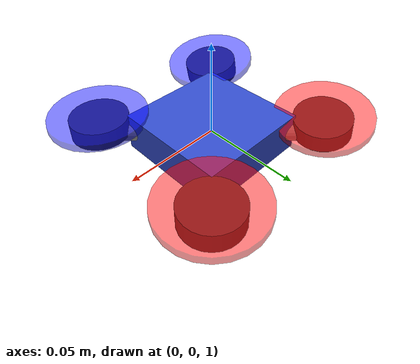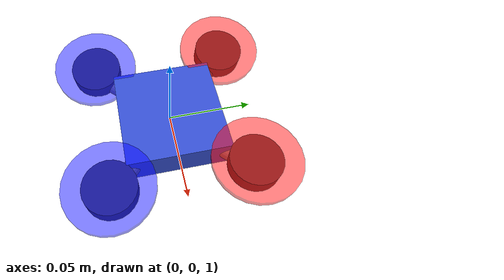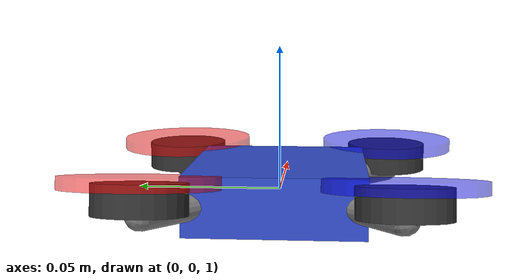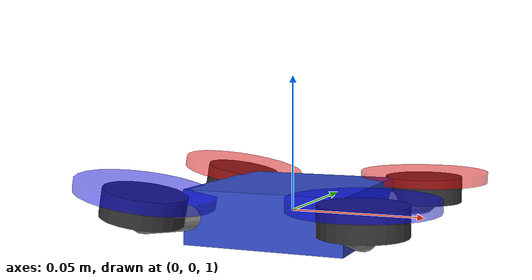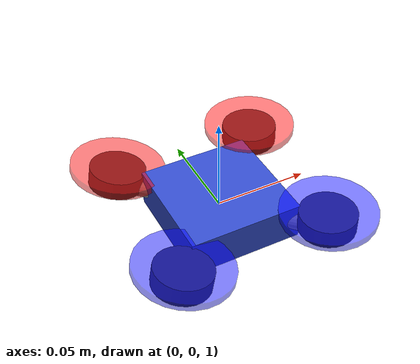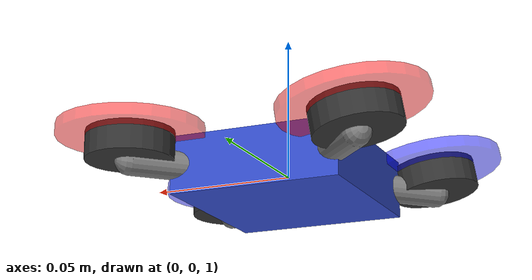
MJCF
<mujoco model="custom_drone">
    <compiler angle="degree" coordinate="local" eulerseq="xyz"/>
    <option timestep="0.002" gravity="0 0 -9.81"/>

    <custom>
        <numeric name="transport_delay_ms" data="10.0"/>
        <numeric name="motor_tau" data="0.015"/>
        <numeric name="dof_mask" data="0 0 1 1 1 1"/>
    </custom>

    <worldbody>
        <light name="sun" pos="0 0 10" dir="0 0 -1"/>
        <geom name="floor" type="plane" size="10 10 0.1" rgba="0.8 0.9 0.8 1"/>

        <body name="drone" pos="0 0 1">
            <freejoint name="root"/>

            <!-- Core -->
            <geom name="core" type="box" size="0.03 0.03 0.01" mass="0.08" rgba="0.2 0.3 0.8 1"/>

            <!-- Motor 0: 2" CCW (Force: 2N, Cant: 0, 0) -->
            <body name="motor_assembly_0" pos="0 0 0">
                <geom name="arm_0" type="capsule" fromto="0 0 0 0.04 0.04 0" size="0.005" mass="0.011" rgba="0.5 0.5 0.5 1"/>
                <body name="motor_mount_0" pos="0.04 0.04 0.005" euler="0 0 0">
                    <geom name="motor_bell_0" type="cylinder" size="0.015 0.005" mass="0.03" rgba="0.2 0.2 0.2 1"/>
                    <site name="thruster_0" type="cylinder" pos="0 0 0.005" size="0.025 0.002" rgba="1 0 0 0.5"/>
                </body>
            </body>

            <!-- Motor 1: 2" CW (Force: 2N, Cant: 0, 0) -->
            <body name="motor_assembly_1" pos="0 0 0">
                <geom name="arm_1" type="capsule" fromto="0 0 0 0.04 -0.04 0" size="0.005" mass="0.011" rgba="0.5 0.5 0.5 1"/>
                <body name="motor_mount_1" pos="0.04 -0.04 0.005" euler="0 0 0">
                    <geom name="motor_bell_1" type="cylinder" size="0.015 0.005" mass="0.03" rgba="0.2 0.2 0.2 1"/>
                    <site name="thruster_1" type="cylinder" pos="0 0 0.005" size="0.025 0.002" rgba="0 0 1 0.5"/>
                </body>
            </body>

            <!-- Motor 2: 2" CW (Force: 2N, Cant: 0, 10) -->
            <body name="motor_assembly_2" pos="0 0 0">
                <geom name="arm_2" type="capsule" fromto="0 0 0 -0.04 0.04 0" size="0.005" mass="0.011" rgba="0.5 0.5 0.5 1"/>
                <body name="motor_mount_2" pos="-0.04 0.04 0.005" euler="0 10 0">
                    <geom name="motor_bell_2" type="cylinder" size="0.015 0.005" mass="0.03" rgba="0.2 0.2 0.2 1"/>
                    <site name="thruster_2" type="cylinder" pos="0 0 0.005" size="0.025 0.002" rgba="1 0 0 0.5"/>
                </body>
            </body>

            <!-- Motor 3: 2" CCW (Force: 2N, Cant: 0, 10) -->
            <body name="motor_assembly_3" pos="0 0 0">
                <geom name="arm_3" type="capsule" fromto="0 0 0 -0.04 -0.04 0" size="0.005" mass="0.011" rgba="0.5 0.5 0.5 1"/>
                <body name="motor_mount_3" pos="-0.04 -0.04 0.005" euler="0 10 0">
                    <geom name="motor_bell_3" type="cylinder" size="0.015 0.005" mass="0.03" rgba="0.2 0.2 0.2 1"/>
                    <site name="thruster_3" type="cylinder" pos="0 0 0.005" size="0.025 0.002" rgba="0 0 1 0.5"/>
                </body>
            </body>
        </body>
    </worldbody>

    <actuator>
        <general name="m_0" site="thruster_0" gear="0 0 1 0 0 0.0015" ctrllimited="true" ctrlrange="0 2.0"/>
        <general name="m_1" site="thruster_1" gear="0 0 1 0 0 -0.0015" ctrllimited="true" ctrlrange="0 2.0"/>
        <general name="m_2" site="thruster_2" gear="0 0 1 0 0 -0.0015" ctrllimited="true" ctrlrange="0 2.0"/>
        <general name="m_3" site="thruster_3" gear="0 0 1 0 0 0.0015" ctrllimited="true" ctrlrange="0 2.0"/>
    </actuator>
</mujoco>
